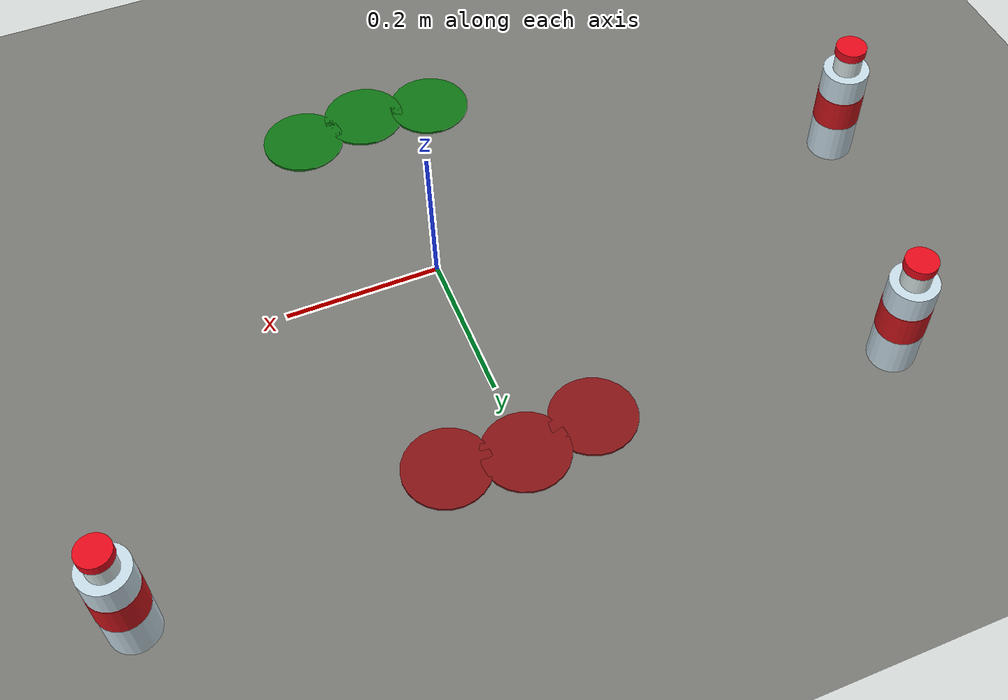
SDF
<sdf version="1.7">
 <world name="ep_six_object_sorting">
  <gravity>0 0 -9.81</gravity>
  <scene><ambient>0.45 0.45 0.45 1</ambient><background>0.85 0.87 0.9 1</background></scene>
  <physics type="ode">
   <real_time_update_rate>1000</real_time_update_rate>
   <max_step_size>0.001</max_step_size>
  </physics>
  <light name="sun" type="directional">
   <pose>0 0 4 0 0 0</pose>
   <diffuse>0.8 0.8 0.8 1</diffuse>
   <specular>0.3 0.3 0.3 1</specular>
   <direction>-0.2 -0.3 -1</direction>
  </light>
  <model name="floor">
   <static>true</static>
   <link name="floor">
    <collision name="collision">
     <geometry><plane><normal>0 0 1</normal><size>5 5</size></plane></geometry>
    </collision>
    <visual name="visual">
     <geometry><plane><normal>0 0 1</normal><size>5 5</size></plane></geometry>
     <material><ambient>0.47 0.47 0.45 1</ambient><diffuse>0.47 0.47 0.45 1</diffuse></material>
    </visual>
   </link>
  </model>
  <model name="ball_zone_1">
   <static>true</static>
   <pose>0.0000 -0.3000 0.002 0 0 0</pose>
   <link name="marker">
    <visual name="disk">
     <geometry><cylinder><radius>0.055</radius><length>0.003</length></cylinder></geometry>
     <material><ambient>0.05 0.45 0.07 1</ambient><diffuse>0.05 0.45 0.07 1</diffuse></material>
    </visual>
   </link>
  </model>
  <model name="ball_zone_2">
   <static>true</static>
   <pose>0.0927 -0.2853 0.002 0 0 0</pose>
   <link name="marker">
    <visual name="disk">
     <geometry><cylinder><radius>0.055</radius><length>0.003</length></cylinder></geometry>
     <material><ambient>0.05 0.45 0.07 1</ambient><diffuse>0.05 0.45 0.07 1</diffuse></material>
    </visual>
   </link>
  </model>
  <model name="ball_zone_3">
   <static>true</static>
   <pose>-0.0927 -0.2853 0.002 0 0 0</pose>
   <link name="marker">
    <visual name="disk">
     <geometry><cylinder><radius>0.055</radius><length>0.003</length></cylinder></geometry>
     <material><ambient>0.05 0.45 0.07 1</ambient><diffuse>0.05 0.45 0.07 1</diffuse></material>
    </visual>
   </link>
  </model>
  <model name="bottle_zone_1">
   <static>true</static>
   <pose>0.0000 0.3000 0.002 0 0 0</pose>
   <link name="marker">
    <visual name="disk">
     <geometry><cylinder><radius>0.055</radius><length>0.003</length></cylinder></geometry>
     <material><ambient>0.52 0.07 0.08 1</ambient><diffuse>0.52 0.07 0.08 1</diffuse></material>
    </visual>
   </link>
  </model>
  <model name="bottle_zone_2">
   <static>true</static>
   <pose>0.0927 0.2853 0.002 0 0 0</pose>
   <link name="marker">
    <visual name="disk">
     <geometry><cylinder><radius>0.055</radius><length>0.003</length></cylinder></geometry>
     <material><ambient>0.52 0.07 0.08 1</ambient><diffuse>0.52 0.07 0.08 1</diffuse></material>
    </visual>
   </link>
  </model>
  <model name="bottle_zone_3">
   <static>true</static>
   <pose>-0.0927 0.2853 0.002 0 0 0</pose>
   <link name="marker">
    <visual name="disk">
     <geometry><cylinder><radius>0.055</radius><length>0.003</length></cylinder></geometry>
     <material><ambient>0.52 0.07 0.08 1</ambient><diffuse>0.52 0.07 0.08 1</diffuse></material>
    </visual>
   </link>
  </model>
  <model name="bottle_2">
   <pose>0.4692 0.3409 0 0 0 0</pose>
   <link name="body">
    <inertial><mass>0.04</mass><inertia><ixx>0.0003</ixx><iyy>0.0003</iyy><izz>0.0003</izz></inertia></inertial>
    <collision name="collision">
     <pose>0 0 0.070 0 0 0</pose>
     <geometry><cylinder><radius>0.030</radius><length>0.14</length></cylinder></geometry>
     <surface><friction><ode><mu>0.8</mu><mu2>0.8</mu2></ode></friction></surface>
    </collision>
    <visual name="main">
     <pose>0 0 0.070 0 0 0</pose>
     <geometry><cylinder><radius>0.030</radius><length>0.14</length></cylinder></geometry>
     <material><ambient>0.78 0.86 0.90 1</ambient><diffuse>0.78 0.86 0.90 1</diffuse></material>
    </visual>
    <visual name="label">
     <pose>0 0 0.08 0 0 0</pose>
     <geometry><cylinder><radius>0.0305</radius><length>0.045</length></cylinder></geometry>
     <material><diffuse>0.80 0.08 0.10 1</diffuse></material>
    </visual>
    <visual name="neck">
     <pose>0 0 0.155 0 0 0</pose>
     <geometry><cylinder><radius>0.018</radius><length>0.03</length></cylinder></geometry>
     <material><diffuse>0.85 0.9 0.9 1</diffuse></material>
    </visual>
    <visual name="red_cap">
     <pose>0 0 0.172 0 0 0</pose>
     <geometry><cylinder><radius>0.020</radius><length>0.012</length></cylinder></geometry>
     <material><diffuse>0.9 0.04 0.1 1</diffuse></material>
    </visual>
   </link>
  </model>
  <model name="bottle_4">
   <pose>-0.4692 0.3409 0 0 0 0</pose>
   <link name="body">
    <inertial><mass>0.04</mass><inertia><ixx>0.0003</ixx><iyy>0.0003</iyy><izz>0.0003</izz></inertia></inertial>
    <collision name="collision">
     <pose>0 0 0.070 0 0 0</pose>
     <geometry><cylinder><radius>0.030</radius><length>0.14</length></cylinder></geometry>
     <surface><friction><ode><mu>0.8</mu><mu2>0.8</mu2></ode></friction></surface>
    </collision>
    <visual name="main">
     <pose>0 0 0.070 0 0 0</pose>
     <geometry><cylinder><radius>0.030</radius><length>0.14</length></cylinder></geometry>
     <material><ambient>0.78 0.86 0.90 1</ambient><diffuse>0.78 0.86 0.90 1</diffuse></material>
    </visual>
    <visual name="label">
     <pose>0 0 0.08 0 0 0</pose>
     <geometry><cylinder><radius>0.0305</radius><length>0.045</length></cylinder></geometry>
     <material><diffuse>0.80 0.08 0.10 1</diffuse></material>
    </visual>
    <visual name="neck">
     <pose>0 0 0.155 0 0 0</pose>
     <geometry><cylinder><radius>0.018</radius><length>0.03</length></cylinder></geometry>
     <material><diffuse>0.85 0.9 0.9 1</diffuse></material>
    </visual>
    <visual name="red_cap">
     <pose>0 0 0.172 0 0 0</pose>
     <geometry><cylinder><radius>0.020</radius><length>0.012</length></cylinder></geometry>
     <material><diffuse>0.9 0.04 0.1 1</diffuse></material>
    </visual>
   </link>
  </model>
  <model name="bottle_6">
   <pose>-0.5800 0.0000 0 0 0 0</pose>
   <link name="body">
    <inertial><mass>0.04</mass><inertia><ixx>0.0003</ixx><iyy>0.0003</iyy><izz>0.0003</izz></inertia></inertial>
    <collision name="collision">
     <pose>0 0 0.070 0 0 0</pose>
     <geometry><cylinder><radius>0.030</radius><length>0.14</length></cylinder></geometry>
     <surface><friction><ode><mu>0.8</mu><mu2>0.8</mu2></ode></friction></surface>
    </collision>
    <visual name="main">
     <pose>0 0 0.070 0 0 0</pose>
     <geometry><cylinder><radius>0.030</radius><length>0.14</length></cylinder></geometry>
     <material><ambient>0.78 0.86 0.90 1</ambient><diffuse>0.78 0.86 0.90 1</diffuse></material>
    </visual>
    <visual name="label">
     <pose>0 0 0.08 0 0 0</pose>
     <geometry><cylinder><radius>0.0305</radius><length>0.045</length></cylinder></geometry>
     <material><diffuse>0.80 0.08 0.10 1</diffuse></material>
    </visual>
    <visual name="neck">
     <pose>0 0 0.155 0 0 0</pose>
     <geometry><cylinder><radius>0.018</radius><length>0.03</length></cylinder></geometry>
     <material><diffuse>0.85 0.9 0.9 1</diffuse></material>
    </visual>
    <visual name="red_cap">
     <pose>0 0 0.172 0 0 0</pose>
     <geometry><cylinder><radius>0.020</radius><length>0.012</length></cylinder></geometry>
     <material><diffuse>0.9 0.04 0.1 1</diffuse></material>
    </visual>
   </link>
  </model>
  <model name="overhead_camera">
   <static>true</static>
   <pose>0 0 2.1 0 0 0</pose>
   <link name="camera">
    <sensor name="overhead" type="camera">
     <always_on>true</always_on>
     <update_rate>5</update_rate>
     <pose>0 0 0 0 1.5707963 0</pose>
     <camera>
      <horizontal_fov>1.4</horizontal_fov>
      <image><width>960</width><height>720</height><format>B8G8R8</format></image>
      <clip><near>0.1</near><far>5</far></clip>
     </camera>
     <plugin filename="libgazebo_ros_camera.so" name="overhead_ros">
      <ros><namespace>/sim</namespace></ros>
      <camera_name>overhead</camera_name>
      <frame_name>sim_overhead</frame_name>
     </plugin>
    </sensor>
   </link>
  </model>
 </world>
</sdf>
